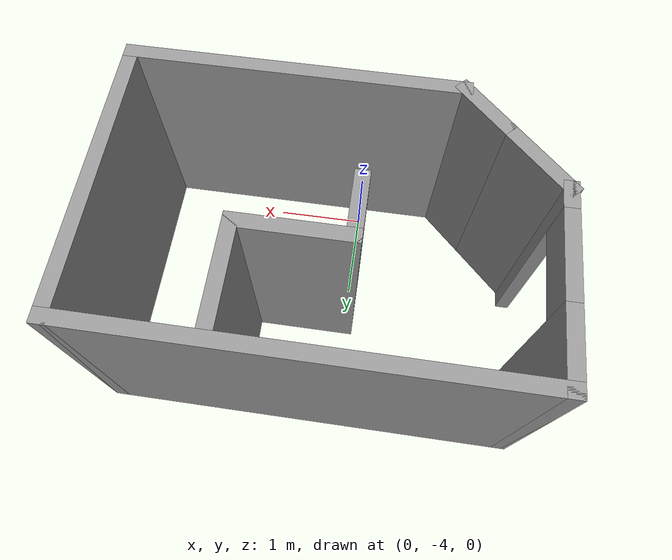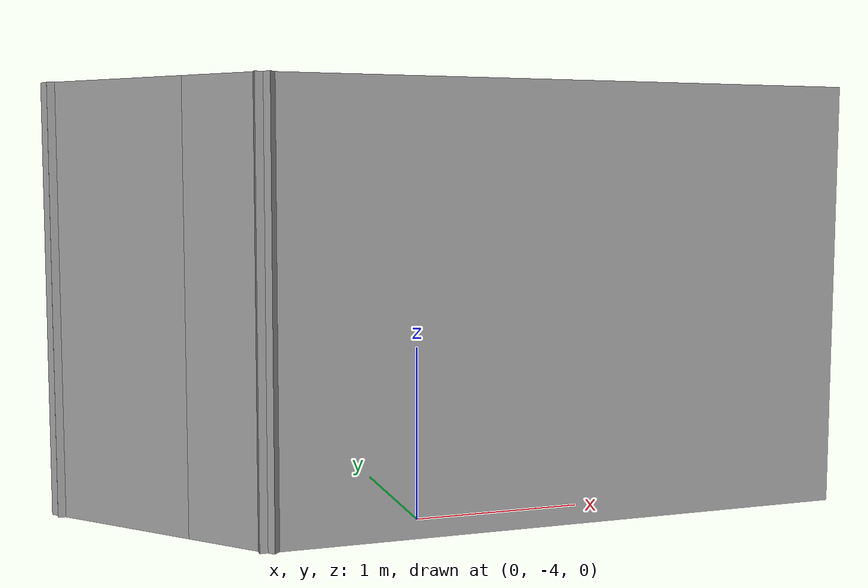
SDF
<?xml version='1.0'?>
<sdf version='1.7'>
  <model name='myfirst_building'>
    <pose>0.258426 -2.18751 0 0 -0 0</pose>
    <link name='Wall_0'>
      <collision name='Wall_0_Collision'>
        <geometry>
          <box>
            <size>1 0.15 2.5</size>
          </box>
        </geometry>
        <pose>0 0 1.25 0 -0 0</pose>
      </collision>
      <visual name='Wall_0_Visual'>
        <pose>0 0 1.25 0 -0 0</pose>
        <geometry>
          <box>
            <size>1 0.15 2.5</size>
          </box>
        </geometry>
        <material>
          <script>
            <uri>file://media/materials/scripts/gazebo.material</uri>
            <name>Gazebo/Grey</name>
          </script>
          <ambient>1 1 1 1</ambient>
        </material>
        <meta>
          <layer>0</layer>
        </meta>
      </visual>
      <pose>-1.85895 -1.38197 0 0 -0 2.35619</pose>
    </link>
    <link name='Wall_1'>
      <pose>-2.15947 -0.156447 0 0 -0 1.5708</pose>
      <visual name='Wall_1_Visual_0'>
        <pose>-0.85802 0 1.25 0 -0 0</pose>
        <geometry>
          <box>
            <size>0.283959 0.15 2.5</size>
          </box>
        </geometry>
        <material>
          <script>
            <uri>file://media/materials/scripts/gazebo.material</uri>
            <name>Gazebo/Grey</name>
          </script>
          <ambient>1 1 1 1</ambient>
        </material>
        <meta>
          <layer>0</layer>
        </meta>
      </visual>
      <collision name='Wall_1_Collision_0'>
        <geometry>
          <box>
            <size>0.283959 0.15 2.5</size>
          </box>
        </geometry>
        <pose>-0.85802 0 1.25 0 -0 0</pose>
      </collision>
      <visual name='Wall_1_Visual_1'>
        <pose>0.59198 0 1.25 0 -0 0</pose>
        <geometry>
          <box>
            <size>0.816041 0.15 2.5</size>
          </box>
        </geometry>
        <material>
          <script>
            <uri>file://media/materials/scripts/gazebo.material</uri>
            <name>Gazebo/Grey</name>
          </script>
          <ambient>1 1 1 1</ambient>
        </material>
        <meta>
          <layer>0</layer>
        </meta>
      </visual>
      <collision name='Wall_1_Collision_1'>
        <geometry>
          <box>
            <size>0.816041 0.15 2.5</size>
          </box>
        </geometry>
        <pose>0.59198 0 1.25 0 -0 0</pose>
      </collision>
      <visual name='Wall_1_Visual_2'>
        <pose>-0.266041 0 2.25 0 -0 0</pose>
        <geometry>
          <box>
            <size>0.9 0.15 0.5</size>
          </box>
        </geometry>
        <material>
          <script>
            <uri>file://media/materials/scripts/gazebo.material</uri>
            <name>Gazebo/Grey</name>
          </script>
          <ambient>1 1 1 1</ambient>
        </material>
        <meta>
          <layer>0</layer>
        </meta>
      </visual>
      <collision name='Wall_1_Collision_2'>
        <geometry>
          <box>
            <size>0.9 0.15 0.5</size>
          </box>
        </geometry>
        <pose>-0.266041 0 2.25 0 -0 0</pose>
      </collision>
    </link>
    <link name='Wall_2'>
      <collision name='Wall_2_Collision'>
        <geometry>
          <box>
            <size>4.5 0.15 2.5</size>
          </box>
        </geometry>
        <pose>0 0 1.25 0 -0 0</pose>
      </collision>
      <visual name='Wall_2_Visual'>
        <pose>0 0 1.25 0 -0 0</pose>
        <geometry>
          <box>
            <size>4.5 0.15 2.5</size>
          </box>
        </geometry>
        <material>
          <script>
            <uri>file://media/materials/scripts/gazebo.material</uri>
            <name>Gazebo/Grey</name>
          </script>
          <ambient>1 1 1 1</ambient>
        </material>
        <meta>
          <layer>0</layer>
        </meta>
      </visual>
      <pose>0.015533 0.768553 0 0 -0 0</pose>
    </link>
    <link name='Wall_3'>
      <collision name='Wall_3_Collision'>
        <geometry>
          <box>
            <size>3 0.15 2.5</size>
          </box>
        </geometry>
        <pose>0 0 1.25 0 -0 0</pose>
      </collision>
      <visual name='Wall_3_Visual'>
        <pose>0 0 1.25 0 -0 0</pose>
        <geometry>
          <box>
            <size>3 0.15 2.5</size>
          </box>
        </geometry>
        <material>
          <script>
            <uri>file://media/materials/scripts/gazebo.material</uri>
            <name>Gazebo/Grey</name>
          </script>
          <ambient>1 1 1 1</ambient>
        </material>
        <meta>
          <layer>0</layer>
        </meta>
      </visual>
      <pose>2.19053 -0.656447 0 0 -0 -1.5708</pose>
    </link>
    <link name='Wall_4'>
      <collision name='Wall_4_Collision'>
        <geometry>
          <box>
            <size>3.5 0.15 2.5</size>
          </box>
        </geometry>
        <pose>0 0 1.25 0 -0 0</pose>
      </collision>
      <visual name='Wall_4_Visual'>
        <pose>0 0 1.25 0 -0 0</pose>
        <geometry>
          <box>
            <size>3.5 0.15 2.5</size>
          </box>
        </geometry>
        <material>
          <script>
            <uri>file://media/materials/scripts/gazebo.material</uri>
            <name>Gazebo/Grey</name>
          </script>
          <ambient>1 1 1 1</ambient>
        </material>
        <meta>
          <layer>0</layer>
        </meta>
      </visual>
      <pose>0.515533 -2.08145 0 0 -0 3.14159</pose>
    </link>
    <link name='Wall_5'>
      <collision name='Wall_5_Collision'>
        <geometry>
          <box>
            <size>0.714214 0.15 2.5</size>
          </box>
        </geometry>
        <pose>0 0 1.25 0 -0 0</pose>
      </collision>
      <visual name='Wall_5_Visual'>
        <pose>0 0 1.25 0 -0 0</pose>
        <geometry>
          <box>
            <size>0.714214 0.15 2.5</size>
          </box>
        </geometry>
        <material>
          <script>
            <uri>file://media/materials/scripts/gazebo.material</uri>
            <name>Gazebo/Grey</name>
          </script>
          <ambient>1 1 1 1</ambient>
        </material>
        <meta>
          <layer>0</layer>
        </meta>
      </visual>
      <pose>-1.35895 -1.88197 0 0 -0 2.35619</pose>
    </link>
    <link name='Wall_7'>
      <collision name='Wall_7_Collision'>
        <geometry>
          <box>
            <size>1.25 0.15 2.5</size>
          </box>
        </geometry>
        <pose>0 0 1.25 0 -0 0</pose>
      </collision>
      <visual name='Wall_7_Visual'>
        <pose>0 0 1.25 0 -0 0</pose>
        <geometry>
          <box>
            <size>1.25 0.15 2.5</size>
          </box>
        </geometry>
        <material>
          <script>
            <uri>file://media/materials/scripts/gazebo.material</uri>
            <name>Gazebo/Grey</name>
          </script>
          <ambient>1 1 1 1</ambient>
        </material>
        <meta>
          <layer>0</layer>
        </meta>
      </visual>
      <pose>0.821574 0.217513 0 0 -0 -1.5708</pose>
    </link>
    <link name='Wall_8'>
      <collision name='Wall_8_Collision'>
        <geometry>
          <box>
            <size>1.25 0.15 2.5</size>
          </box>
        </geometry>
        <pose>0 0 1.25 0 -0 0</pose>
      </collision>
      <visual name='Wall_8_Visual'>
        <pose>0 0 1.25 0 -0 0</pose>
        <geometry>
          <box>
            <size>1.25 0.15 2.5</size>
          </box>
        </geometry>
        <material>
          <script>
            <uri>file://media/materials/scripts/gazebo.material</uri>
            <name>Gazebo/Grey</name>
          </script>
          <ambient>1 1 1 1</ambient>
        </material>
        <meta>
          <layer>0</layer>
        </meta>
      </visual>
      <pose>0.271574 -0.332487 0 0 -0 3.14159</pose>
    </link>
    <link name='Wall_9'>
      <collision name='Wall_9_Collision'>
        <geometry>
          <box>
            <size>0.75 0.15 2.5</size>
          </box>
        </geometry>
        <pose>0 0 1.25 0 -0 0</pose>
      </collision>
      <visual name='Wall_9_Visual'>
        <pose>0 0 1.25 0 -0 0</pose>
        <geometry>
          <box>
            <size>0.75 0.15 2.5</size>
          </box>
        </geometry>
        <material>
          <script>
            <uri>file://media/materials/scripts/gazebo.material</uri>
            <name>Gazebo/Grey</name>
          </script>
          <ambient>1 1 1 1</ambient>
        </material>
        <meta>
          <layer>0</layer>
        </meta>
      </visual>
      <pose>-0.278426 -0.632487 0 0 -0 -1.5708</pose>
    </link>
    <static>1</static>
  </model>
</sdf>
